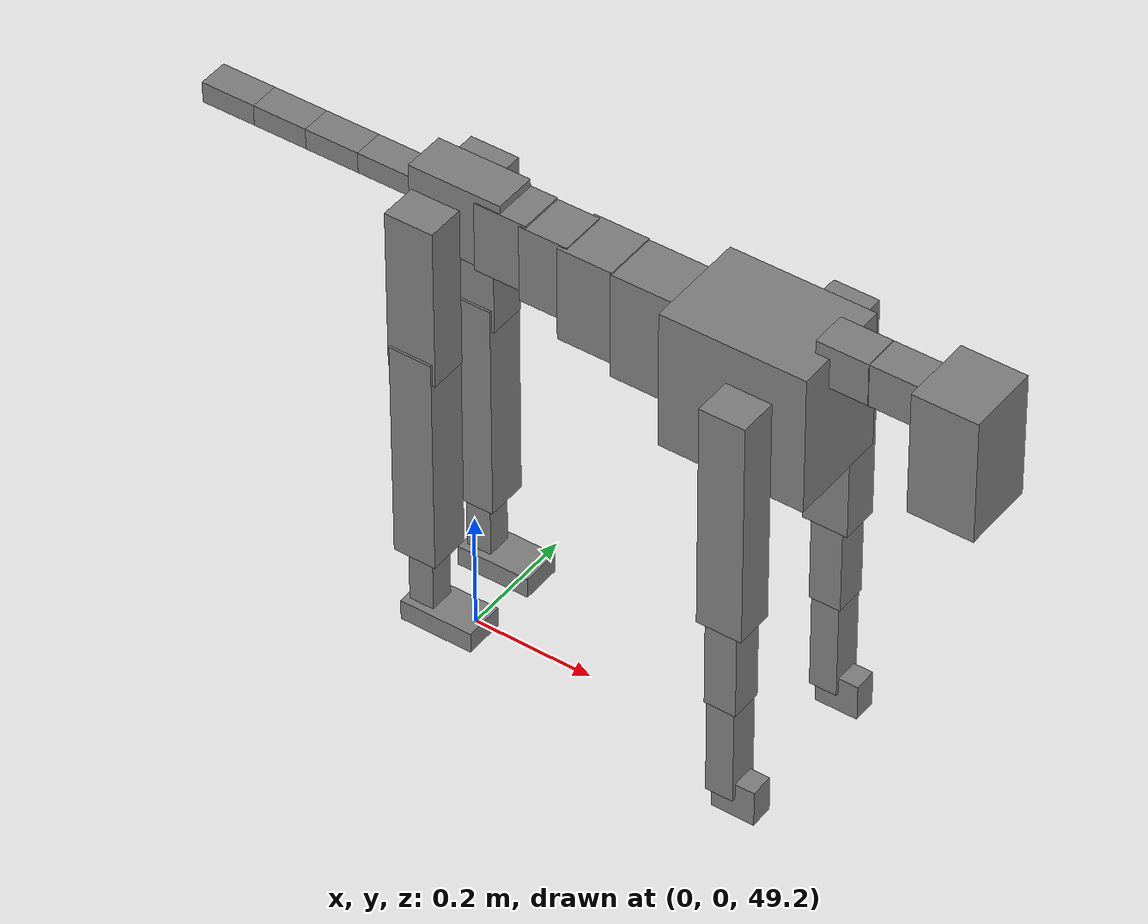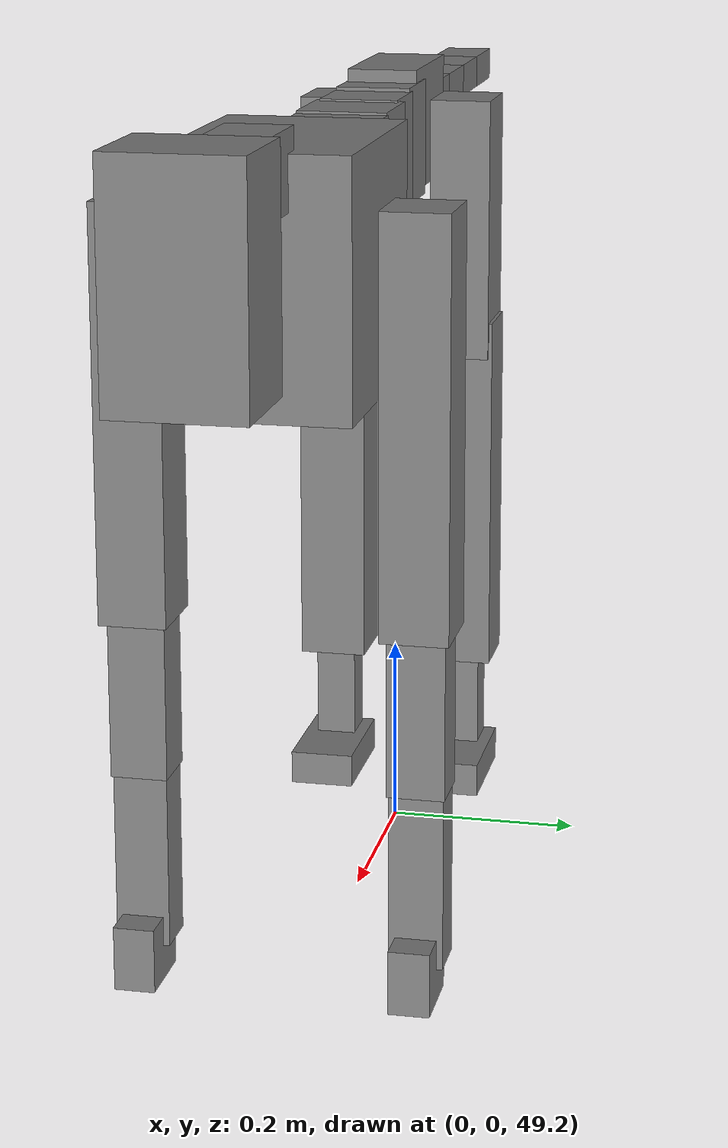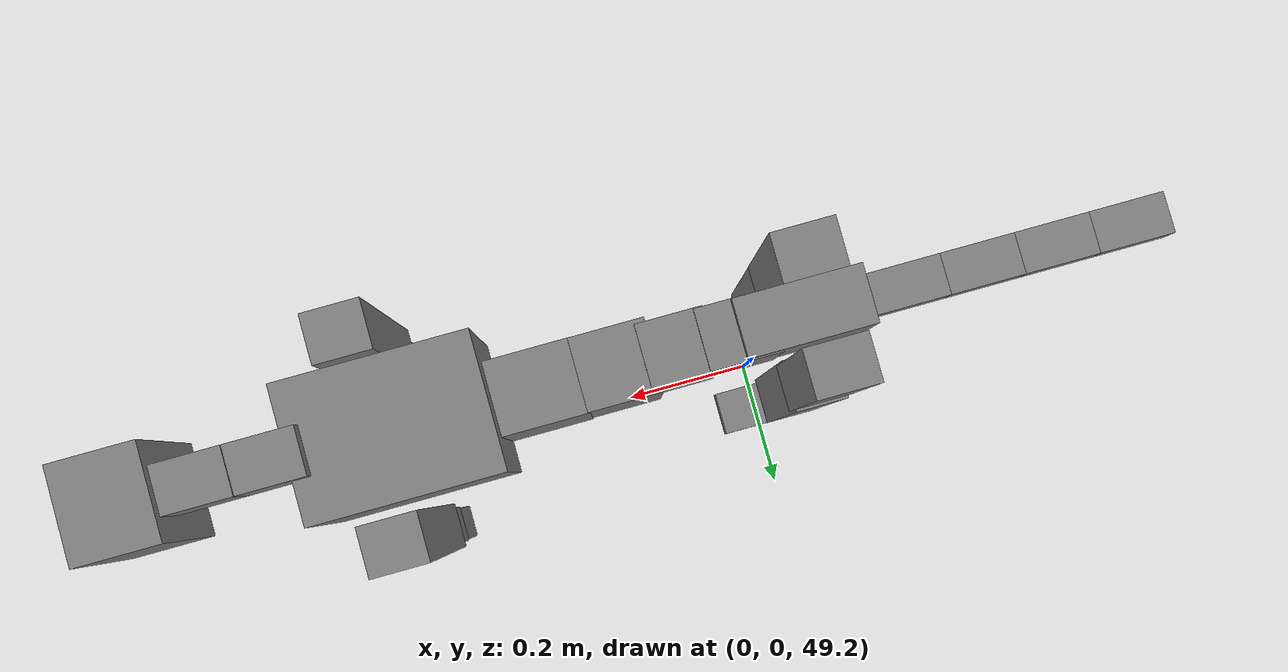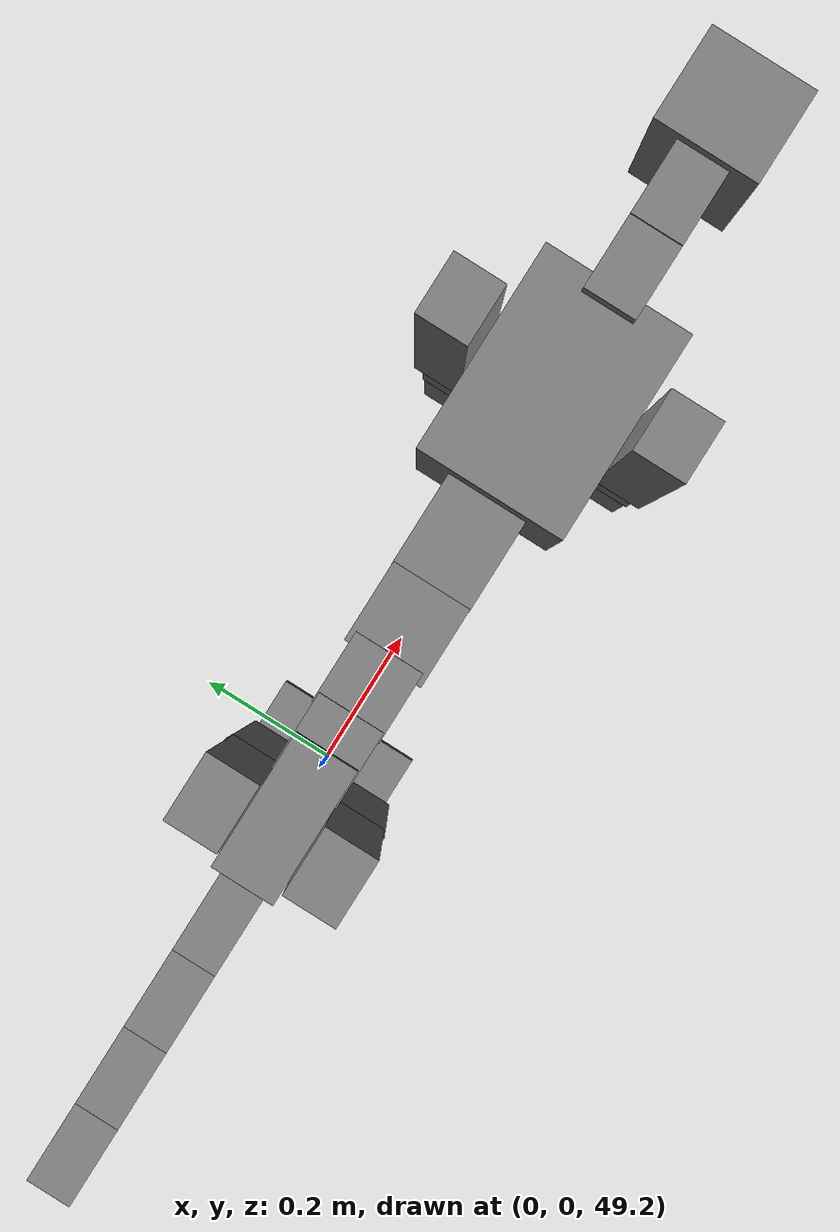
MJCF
<mujoco model="dog">

    <default>
        <joint armature="0.02" stiffness="1" damping="0.2" limited="true"/>
        <geom condim="3" friction="1 0.05 0.05" margin="0.01"/>
        <motor ctrllimited="true" ctrlrange="-1.0 1.0" forcelimited="true" gear="50"/>
    </default>

    <compiler inertiafromgeom="true" angle="radian"/>

    <option timestep="0.016" iterations="50" tolerance="1e-10" solver="Newton" jacobian="dense" cone="pyramidal"/>

    <size nconmax="20000" njmax="60000" nstack="5000000"/>
    <visual>
        <map force="0.1" zfar="30"/>
        <rgba haze="0.15 0.25 0.35 1"/>
        <quality shadowsize="2048"/>
        <global offwidth="800" offheight="800"/>
    </visual>

    <asset>
        <texture type="skybox" builtin="gradient" rgb1="0.3 0.5 0.7" rgb2="0 0 0" width="512" height="512"/>
        <texture name="texplane" type="2d" builtin="checker" rgb1=".2 .3 .4" rgb2=".1 0.15 0.2" width="512" height="512"
                 mark="cross" markrgb=".8 .8 .8"/>
        <texture name="texgeom" type="cube" builtin="flat" mark="cross" width="127" height="1278" rgb1="0.8 0.6 0.4"
                 rgb2="0.8 0.6 0.4" markrgb="1 1 1" random="0.01"/>

        <material name="matplane" reflectance="0.3" texture="texplane" texrepeat="1 1" texuniform="true"/>
        <material name="matgeom" texture="texgeom" texuniform="true" rgba="0.8 0.6 .4 1"/>
    </asset>

    <worldbody>
        <geom name="floor" pos="0 0 0" size="0 0 .25" type="plane" material="matplane" condim="3"/>

        <light directional="false" diffuse=".2 .2 .2" specular="0 0 0" pos="0 0 5" dir="0 0 -1" castshadow="false"/>
        <light mode="targetbodycom" target="torso" directional="false" diffuse=".8 .8 .8" specular="0.3 0.3 0.3"
               pos="0 0 4.0" dir="0 0 -1"/>

        <body name="root" pos="0 0 50">
            <freejoint name="root_1"/>
            <geom type="box" pos="0 0 -0.02" size="0.0774  0.0358  0.063" density="2030"/>

            <body name="spine1" pos="0.054 0 0">
                <joint name="spine1_y" axis="0 1 0" range="0 0.7" limited="true"/>
                <geom type="box" pos="0.02375 0 -0.03" size="0.04375  0.0375  0.05985" density="2030"/>

                <body name="spine2" pos="0.0612 0 0">
                    <joint name="spine2_y" axis="0 1 0" range="-0.15 0.15" limited="true"/>
                    <geom type="box" pos="0.03555  0  -0.04" size="0.04055  0.039  0.06615" density="2030"/>

                    <body name="spine3" pos="0.0730 0 0">
                        <joint name="spine3_y" axis="0 1 0" range="-0.15 0.15" limited="true"/>
                        <geom type="box" pos="0.03555  0  -0.057" size="0.04555  0.0445  0.081" density="2030"/>

                        <body name="spine4" pos="0.0780 0 0">
                            <joint name="spine4_y" axis="0 1 0" range="-0.15 0.15" limited="true"/>
                            <geom type="box" pos="0.05265  0  -0.07" size="0.05265  0.045  0.09135" density="2030"/>

                            <body name="torso" pos="0.1082 0 0">
                                <joint name="torso_y" axis="0 1 0" range="-0.15 0.15" limited="true"/>
                                <geom type="box" pos="0.11925  0  -0.085" size="0.11925  0.085  0.11745"
                                      density="2030"/>

                                <body name="neck1" pos="0.2160  0   0.0180">
                                    <joint name="neck1_y" axis="0 1 0" range="-1.2  -1" limited="true"/>
                                    <geom type="box" pos="0.0423  0  0" size="0.0423  0.03  0.036" density="2325"/>

                                    <body name="neck2" pos="0.0853  0  0">
                                        <joint name="neck2_y" axis="0 1 0" range="0.1  0" limited="true"/>
                                        <geom type="box" pos="0.0423  0  0" size="0.0423  0.03  0.036" density="2325"/>

                                        <body name="head" pos="0.0853  0  0">
                                            <joint name="head_y" axis="0 1 0" range="-0.3  -0.2" limited="true"/>
                                            <geom type="box" pos="0.0531  0  -0.055" size="0.0531  0.06  0.1044"
                                                  density="4030"/>

                                        </body>
                                    </body>
                                </body>

                                <body name="front_shoulder" pos="0.156  0   -0.0480">
                                    <joint name="front_shoulder_y" axis="0 1 0" range="-1 1.5" limited="true"/>
                                    <geom type="box" pos="0 0.13 -0.1675" size="0.0373  0.0319  0.1942" density="1158"/>
                                    <geom type="box" pos="0 -0.13 -0.1675" size="0.0373  0.0319  0.1942"
                                          density="1158"/>

                                    <body name="front_elbow" pos="0  0  -0.3350">
                                        <joint name="front_elbow_y" axis="0 1 0" range="-2 0" limited="true"/>
                                        <geom type="box" pos="0 0.13 -0.0882" size="0.0262  0.0268  0.0882"
                                              density="1081"/>
                                        <geom type="box" pos="0 -0.13 -0.0882" size="0.0262  0.0268  0.0882"
                                              density="1081"/>

                                        <body name="front_wrist" pos="0  0  -0.1765">
                                            <joint name="front_wrist_y" axis="0 1 0" range="-0.2 0" limited="true"/>
                                            <geom type="box" pos="0 0.13 -0.0765" size="0.0229  0.0254  0.0897"
                                                  density="1664"/>
                                            <geom type="box" pos="0 -0.13 -0.0765" size="0.0229  0.0254  0.0897"
                                                  density="1664"/>

                                            <body name="front_finger_end" pos="0  0  -0.1530">
                                                <joint name="front_finger_y" axis="0 1 0" range="-0.4 1"
                                                       limited="true"/>
                                                <geom type="box" pos="0.0194  0.13  -0.0159"
                                                      size="0.0356  0.0194  0.0309" density="1515"/>
                                                <geom type="box" pos="0.0194  -0.13  -0.0159"
                                                      size="0.0356  0.0194  0.0309" density="1515"/>

                                            </body>

                                        </body>
                                    </body>
                                </body>

                            </body>
                        </body>
                    </body>
                </body>
            </body>

            <body name="back_hip" pos="-0.03 0 -0.018">
                <joint name="back_hip_y" axis="0 1 0" range="-1.5 0.3" limited="true"/>
                <geom type="box" pos="0 0.07 -0.1151" size="0.0404  0.0317  0.1379" density="1154"/>
                <geom type="box" pos="0 -0.07 -0.1151" size="0.0404  0.0317  0.1379" density="1154"/>

                <body name="back_knee" pos="0  0  -0.2302">
                    <joint name="back_knee_y" axis="0 1 0" range="0 2.8" limited="true"/>
                    <geom type="box" pos="0 0.07 -0.1749" size="0.0359  0.0354  0.1905" density="1227"/>
                    <geom type="box" pos="0 -0.07 -0.1749" size="0.0359  0.0354  0.1905" density="1227"/>

                    <body name="back_ankle" pos="0  0  -0.3498">
                        <joint name="back_ankle_y" axis="0 1 0" range="-2.2 0" limited="true"/>
                        <geom type="box" pos="0 0.07 -0.0640" size="0.0210  0.0210  0.0753" density="1284"/>
                        <geom type="box" pos="0 -0.07 -0.0640" size="0.0210  0.0210  0.0753" density="1284"/>

                        <body name="back_toe_end" pos="0  0  -0.1281">
                            <joint name="back_toe_y" axis="0 1 0" range="-0.4 1" limited="true"/>
                            <geom type="box" pos="0.0337  0.07  -0.0025" size="0.0618  0.0337  0.0175" density="1515"/>
                            <geom type="box" pos="0.0337  -0.07  -0.0025" size="0.0618  0.0337  0.0175" density="1515"/>

                        </body>
                    </body>
                </body>
            </body>

            <body name="tail1" pos="-0.074 0 -0.006">
                <joint name="tail1_y" axis="0 1 0" range="-0.2 0.2" limited="true"/>
                <geom type="box" pos="-0.0536  0  0" size="0.045  0.025  0.0175" density="1587"/>

                <body name="tail2" pos="-0.09 0 0">
                    <joint name="tail2_y" axis="0 1 0" range="-0.2 0.2" limited="true"/>
                    <geom type="box" pos="-0.0536  0  0" size="0.045  0.025  0.0175" density="1587"/>

                    <body name="tail3" pos="-0.09 0 0">
                        <joint name="tail3_y" axis="0 1 0" range="-0.2 0.2" limited="true"/>
                        <geom type="box" pos="-0.0536  0  0" size="0.045  0.025  0.0175" density="1587"/>

                        <body name="tail4" pos="-0.09 0 0">
                            <joint name="tail4_y" axis="0 1 0" range="-0.2 0.2" limited="true"/>
                            <geom type="box" pos="-0.0536  0  0" size="0.045  0.025  0.0175" density="1587"/>

                        </body>
                    </body>
                </body>
            </body>
        </body>
    </worldbody>

    <actuator>
        <motor joint="spine1_y" forcerange="-150 150     "/>
        <motor joint="spine2_y" forcerange="-150 150     "/>
        <motor joint="spine3_y" forcerange="-150 150     "/>
        <motor joint="spine4_y" forcerange="-150 150     "/>
        <motor joint="torso_y" forcerange="-150 150     "/>
        <motor joint="neck1_y" forcerange="-100 100       "/>
        <motor joint="neck2_y" forcerange="-100 100       "/>
        <motor joint="head_y" forcerange="-150 150       "/>
        <motor joint="front_shoulder_y" forcerange="-193.04 119.71"/>
        <motor joint="front_elbow_y" forcerange="-100.60 194.04"/>
        <motor joint="front_wrist_y" forcerange="-118.33 85.05"/>
        <motor joint="front_finger_y" forcerange="-36.22 27.47"/>
        <motor joint="back_hip_y" forcerange="-368.73 254.04"/>
        <motor joint="back_knee_y" forcerange="-323.24 391.30"/>
        <motor joint="back_angle_y" forcerange="-62.74 172.92"/>
        <motor joint="back_toe_y" forcerange="-93.60 95.96"/>
        <motor joint="tail1_y" forcerange="-50 50     "/>
        <motor joint="tail2_y" forcerange="-50 50     "/>
        <motor joint="tail3_y" forcerange="-50 50     "/>
        <motor joint="tail4_y" forcerange="-50 50     "/>
    </actuator>
</mujoco>
